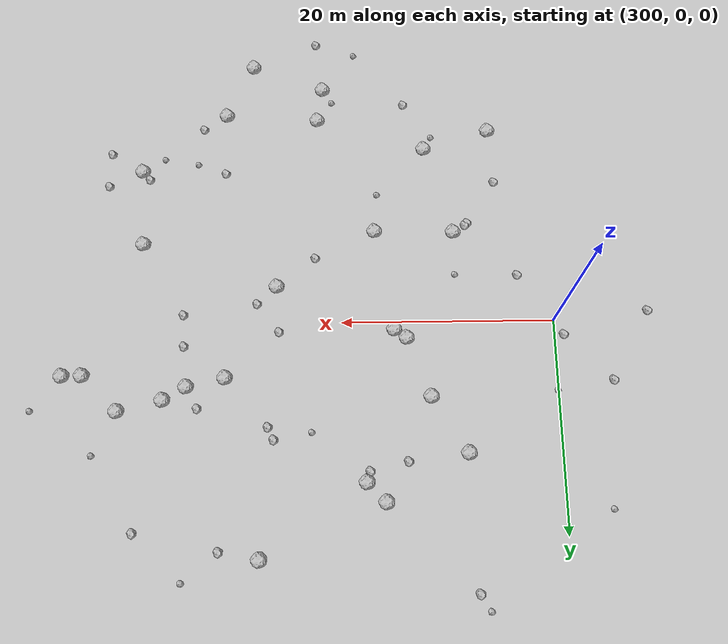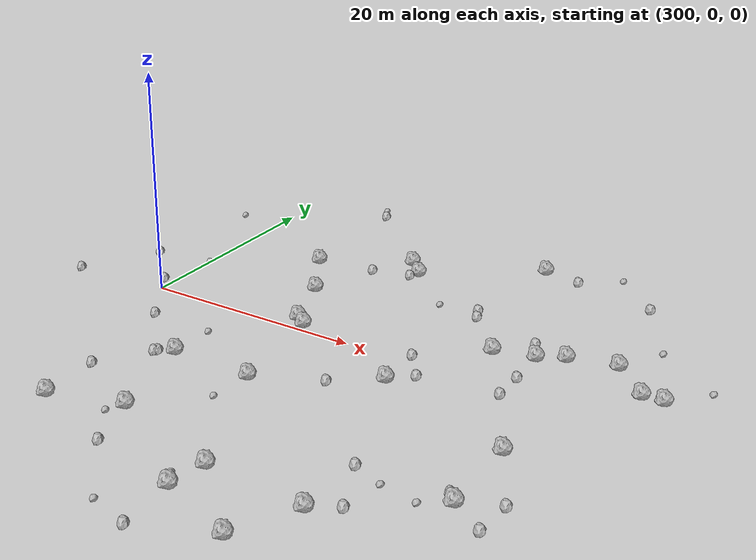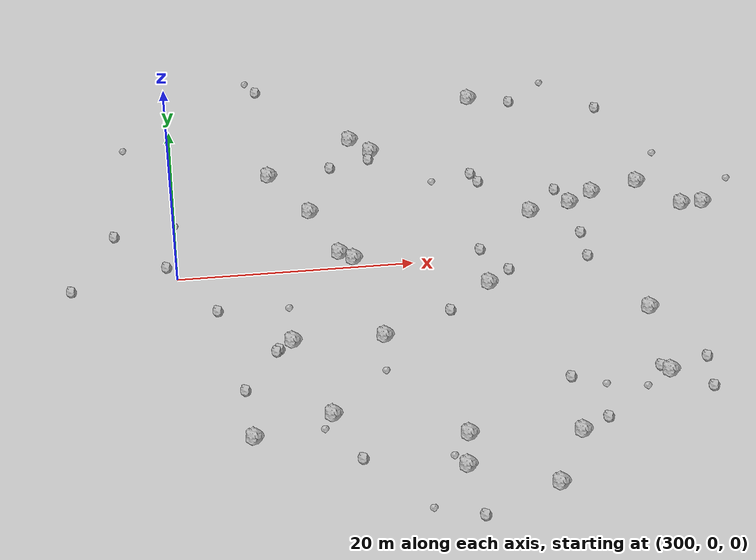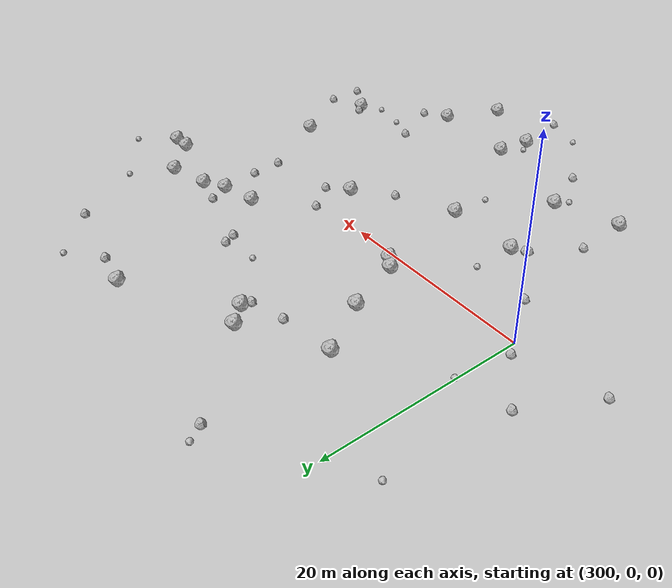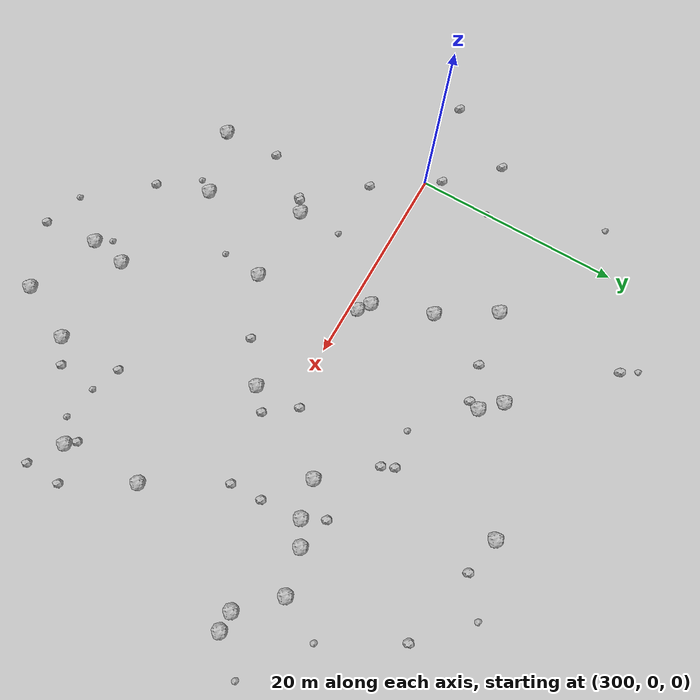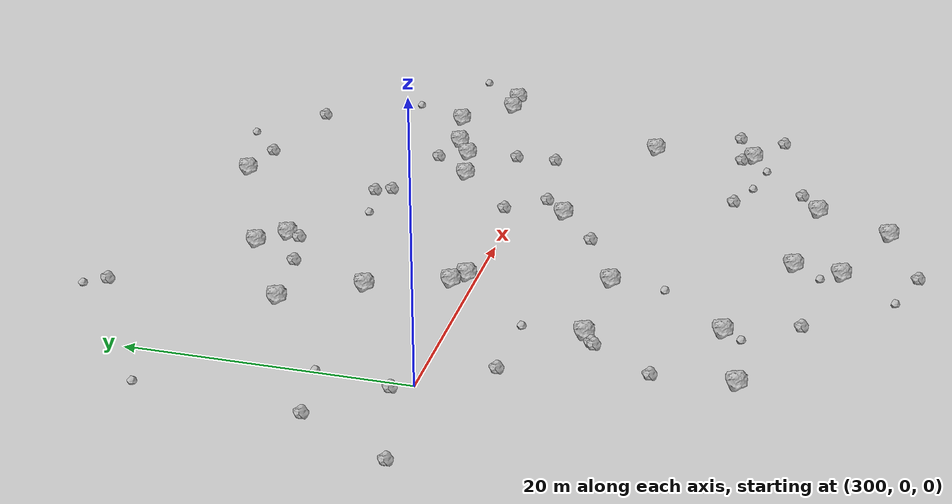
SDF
<sdf version="1.6">
 <world name="default">
  <include><uri>model://sun</uri></include>
  <model name="rock1_8_3">
   <include><uri>model://rock1</uri><pose>317.8516674306059 15.028691968282445 0.5 0 0 0</pose></include>
  </model>
  <model name="rock1_8_4">
   <include><uri>model://rock1</uri><pose>328.6016076623383 -27.20966032431343 0.5 0 0 0</pose></include>
  </model>
  <model name="rock1_8_5">
   <include><uri>model://rock1</uri><pose>308.576357256446 12.469519952043754 0.5 0 0 0</pose></include>
  </model>
  <model name="rock1_8_6">
   <include><uri>model://rock1</uri><pose>321.66572693603274 -24.574048444944367 0.5 0 0 0</pose></include>
  </model>
  <model name="rock1_8_7">
   <include><uri>model://rock1</uri><pose>316.7240914777427 -9.140111996033585 0.5 0 0 0</pose></include>
  </model>
  <model name="rock1_8_8">
   <include><uri>model://rock1</uri><pose>339.3624508854522 -15.706902863951331 0.5 0 0 0</pose></include>
  </model>
  <model name="rock1_8_9">
   <include><uri>model://rock1</uri><pose>334.4176730119645 6.088134308455764 0.5 0 0 0</pose></include>
  </model>
  <model name="rock1_8_10">
   <include><uri>model://rock1</uri><pose>309.1382992298271 -8.989517649369098 0.5 0 0 0</pose></include>
  </model>
  <model name="rock1_8_11">
   <include><uri>model://rock1</uri><pose>331.20713192968924 -21.75211976305262 0.5 0 0 0</pose></include>
  </model>
  <model name="rock1_8_12">
   <include><uri>model://rock1</uri><pose>316.1374836993875 16.818746495447513 0.5 0 0 0</pose></include>
  </model>
  <model name="rock1_8_13">
   <include><uri>model://rock1</uri><pose>345.9709480181826 4.947102257148593 0.5 0 0 0</pose></include>
  </model>
  <model name="rock1_8_14">
   <include><uri>model://rock1</uri><pose>340.72071491973634 8.319850652778264 0.5 0 0 0</pose></include>
  </model>
  <model name="rock1_8_15">
   <include><uri>model://rock1</uri><pose>311.7929235083708 7.220195279201242 0.5 0 0 0</pose></include>
  </model>
  <model name="rock1_8_16">
   <include><uri>model://rock1</uri><pose>327.4777093538587 21.731579759852252 0.5 0 0 0</pose></include>
  </model>
  <model name="rock1_8_17">
   <include><uri>model://rock1</uri><pose>330.85248638931887 5.276165155434114 0.5 0 0 0</pose></include>
  </model>
  <model name="rock1_8_18">
   <include><uri>model://rock1</uri><pose>305.2793666031514 -19.809103108229664 0.5 0 0 0</pose></include>
  </model>
  <model name="rock1_8_19">
   <include><uri>model://rock1</uri><pose>326.1120034206654 -3.5831527317840504 0.5 0 0 0</pose></include>
  </model>
  <model name="rock1_8_20">
   <include><uri>model://rock1</uri><pose>313.902507836082 1.587669793705338 0.5 0 0 0</pose></include>
  </model>
  <model name="rock1_8_21">
   <include><uri>model://rock1</uri><pose>322.20308720144396 -21.14477972205062 0.5 0 0 0</pose></include>
  </model>
  <model name="rock1_8_22">
   <include><uri>model://rock1</uri><pose>338.98842552942835 -8.036243564324916 0.5 0 0 0</pose></include>
  </model>
  <model name="rock1_8_23">
   <include><uri>model://rock1</uri><pose>344.10770272370934 4.925255164757893 0.5 0 0 0</pose></include>
  </model>
  <model name="rock1_8_24">
   <include><uri>model://rock1</uri><pose>311.69475099547094 -17.862613679425028 0.5 0 0 0</pose></include>
  </model>
  <model name="rock1_8_25">
   <include><uri>model://rock1</uri><pose>336.55336214268505 7.322859412202099 0.5 0 0 0</pose></include>
  </model>
  <model name="rock1_8_26">
   <include><uri>model://rock1</uri><pose>315.04980854174175 0.7568217734157585 0.5 0 0 0</pose></include>
  </model>
  <model name="rock2_8_0">
   <include><uri>model://rock2</uri><pose>299.1405046830105 1.400635999773126 0.3 0 0 0</pose></include>
  </model>
  <model name="rock2_8_1">
   <include><uri>model://rock2</uri><pose>338.64155652523334 -14.878791424913437 0.3 0 0 0</pose></include>
  </model>
  <model name="rock2_8_2">
   <include><uri>model://rock2</uri><pose>334.8864631375107 -0.8566442765226192 0.3 0 0 0</pose></include>
  </model>
  <model name="rock2_8_3">
   <include><uri>model://rock2</uri><pose>304.8912987971025 -14.260283369967865 0.3 0 0 0</pose></include>
  </model>
  <model name="rock2_8_4">
   <include><uri>model://rock2</uri><pose>327.9595709137706 -1.8909783521901815 0.3 0 0 0</pose></include>
  </model>
  <model name="rock2_8_5">
   <include><uri>model://rock2</uri><pose>314.029504211999 13.210295820726202 0.3 0 0 0</pose></include>
  </model>
  <model name="rock2_8_6">
   <include><uri>model://rock2</uri><pose>307.70145235089984 -9.949083316066098 0.3 0 0 0</pose></include>
  </model>
  <model name="rock2_8_7">
   <include><uri>model://rock2</uri><pose>294.8096987857281 5.834535380229688 0.3 0 0 0</pose></include>
  </model>
  <model name="rock2_8_8">
   <include><uri>model://rock2</uri><pose>334.7597734875142 2.209266178563688 0.3 0 0 0</pose></include>
  </model>
  <model name="rock2_8_9">
   <include><uri>model://rock2</uri><pose>342.49140072657843 -17.681866236649523 0.3 0 0 0</pose></include>
  </model>
  <model name="rock2_8_10">
   <include><uri>model://rock2</uri><pose>325.8597608942068 0.8977373864268685 0.3 0 0 0</pose></include>
  </model>
  <model name="rock2_8_11">
   <include><uri>model://rock2</uri><pose>322.439205302509 -6.446801230385589 0.3 0 0 0</pose></include>
  </model>
  <model name="rock2_8_12">
   <include><uri>model://rock2</uri><pose>308.1407609443807 24.835456446879945 0.3 0 0 0</pose></include>
  </model>
  <model name="rock2_8_13">
   <include><uri>model://rock2</uri><pose>291.07906451782765 -0.8618381909740265 0.3 0 0 0</pose></include>
  </model>
  <model name="rock2_8_14">
   <include><uri>model://rock2</uri><pose>342.60139162041537 -14.210979941158433 0.3 0 0 0</pose></include>
  </model>
  <model name="rock2_8_15">
   <include><uri>model://rock2</uri><pose>313.5728719270315 -22.858615503789597 0.3 0 0 0</pose></include>
  </model>
  <model name="rock2_8_16">
   <include><uri>model://rock2</uri><pose>333.4546613732145 -20.29548013058482 0.3 0 0 0</pose></include>
  </model>
  <model name="rock2_8_17">
   <include><uri>model://rock2</uri><pose>333.3557340929193 8.148534612772778 0.3 0 0 0</pose></include>
  </model>
  <model name="rock2_8_18">
   <include><uri>model://rock2</uri><pose>303.1705153744744 -4.542905363303266 0.3 0 0 0</pose></include>
  </model>
  <model name="rock2_8_19">
   <include><uri>model://rock2</uri><pose>307.94165157498054 -9.70861222189016 0.3 0 0 0</pose></include>
  </model>
  <model name="rock2_8_20">
   <include><uri>model://rock2</uri><pose>331.1894096306037 -15.441711146529062 0.3 0 0 0</pose></include>
  </model>
  <model name="rock2_8_21">
   <include><uri>model://rock2</uri><pose>326.29956530527005 11.112934980444976 0.3 0 0 0</pose></include>
  </model>
  <model name="rock2_8_22">
   <include><uri>model://rock2</uri><pose>317.52129184631383 14.069930947678621 0.3 0 0 0</pose></include>
  </model>
  <model name="rock2_8_23">
   <include><uri>model://rock2</uri><pose>322.3186583488922 -29.84155681372631 0.3 0 0 0</pose></include>
  </model>
  <model name="rock2_8_24">
   <include><uri>model://rock2</uri><pose>326.8297983929318 9.940405768349251 0.3 0 0 0</pose></include>
  </model>
  <model name="rock2_8_25">
   <include><uri>model://rock2</uri><pose>331.0890565919381 21.035382257531168 0.3 0 0 0</pose></include>
  </model>
  <model name="rock2_8_26">
   <include><uri>model://rock2</uri><pose>338.76135992917744 19.326862516426395 0.3 0 0 0</pose></include>
  </model>
  <model name="rock3_8_0">
   <include><uri>model://rock3</uri><pose>310.8760927464621 -19.259696844305424 0.2 0 0 0</pose></include>
  </model>
  <model name="rock3_8_1">
   <include><uri>model://rock3</uri><pose>334.2848271187356 23.61755732603025 0.2 0 0 0</pose></include>
  </model>
  <model name="rock3_8_2">
   <include><uri>model://rock3</uri><pose>295.83105307584646 17.610719852116546 0.2 0 0 0</pose></include>
  </model>
  <model name="rock3_8_3">
   <include><uri>model://rock3</uri><pose>342.7919917370259 12.342561755005349 0.2 0 0 0</pose></include>
  </model>
  <model name="rock3_8_4">
   <include><uri>model://rock3</uri><pose>300.0378319300552 6.707794624808507 0.2 0 0 0</pose></include>
  </model>
  <model name="rock3_8_5">
   <include><uri>model://rock3</uri><pose>307.2428642166499 26.271005318425175 0.2 0 0 0</pose></include>
  </model>
  <model name="rock3_8_6">
   <include><uri>model://rock3</uri><pose>320.7298135575161 -23.238802717924163 0.2 0 0 0</pose></include>
  </model>
  <model name="rock3_8_7">
   <include><uri>model://rock3</uri><pose>348.684845018047 8.15972290429432 0.2 0 0 0</pose></include>
  </model>
  <model name="rock3_8_8">
   <include><uri>model://rock3</uri><pose>309.096864750945 -4.729679207931191 0.2 0 0 0</pose></include>
  </model>
  <model name="rock3_8_9">
   <include><uri>model://rock3</uri><pose>337.1962400042431 -17.09866758434376 0.2 0 0 0</pose></include>
  </model>
  <model name="rock3_8_10">
   <include><uri>model://rock3</uri><pose>316.38435000939495 -13.082413975904128 0.2 0 0 0</pose></include>
  </model>
  <model name="rock3_8_11">
   <include><uri>model://rock3</uri><pose>318.46935100770634 -28.653197793758093 0.2 0 0 0</pose></include>
  </model>
  <model name="rock3_8_12">
   <include><uri>model://rock3</uri><pose>322.7811575828988 10.414591071914174 0.2 0 0 0</pose></include>
  </model>
  <model name="rock3_8_13">
   <include><uri>model://rock3</uri><pose>333.9092783488186 -16.524240265303884 0.2 0 0 0</pose></include>
  </model>
 </world>
</sdf>
